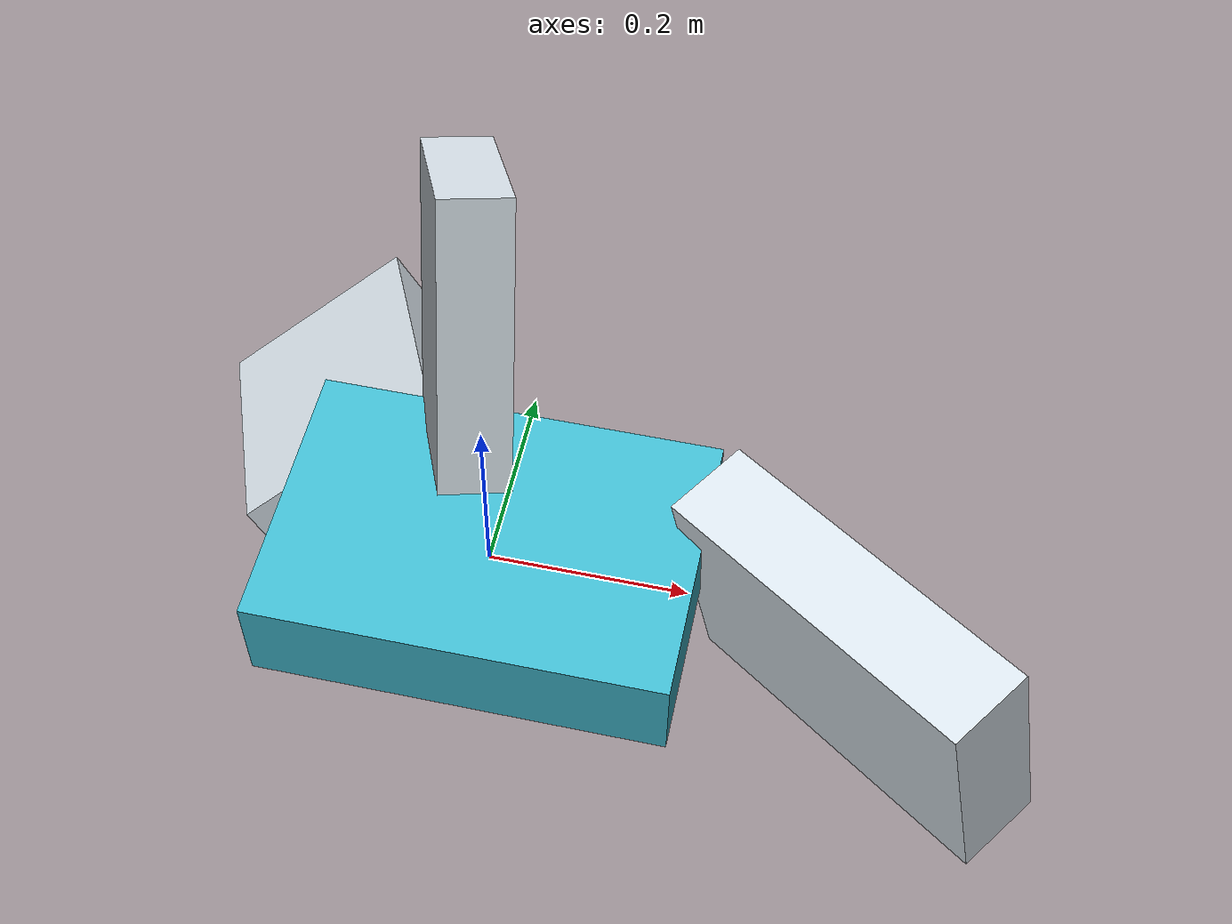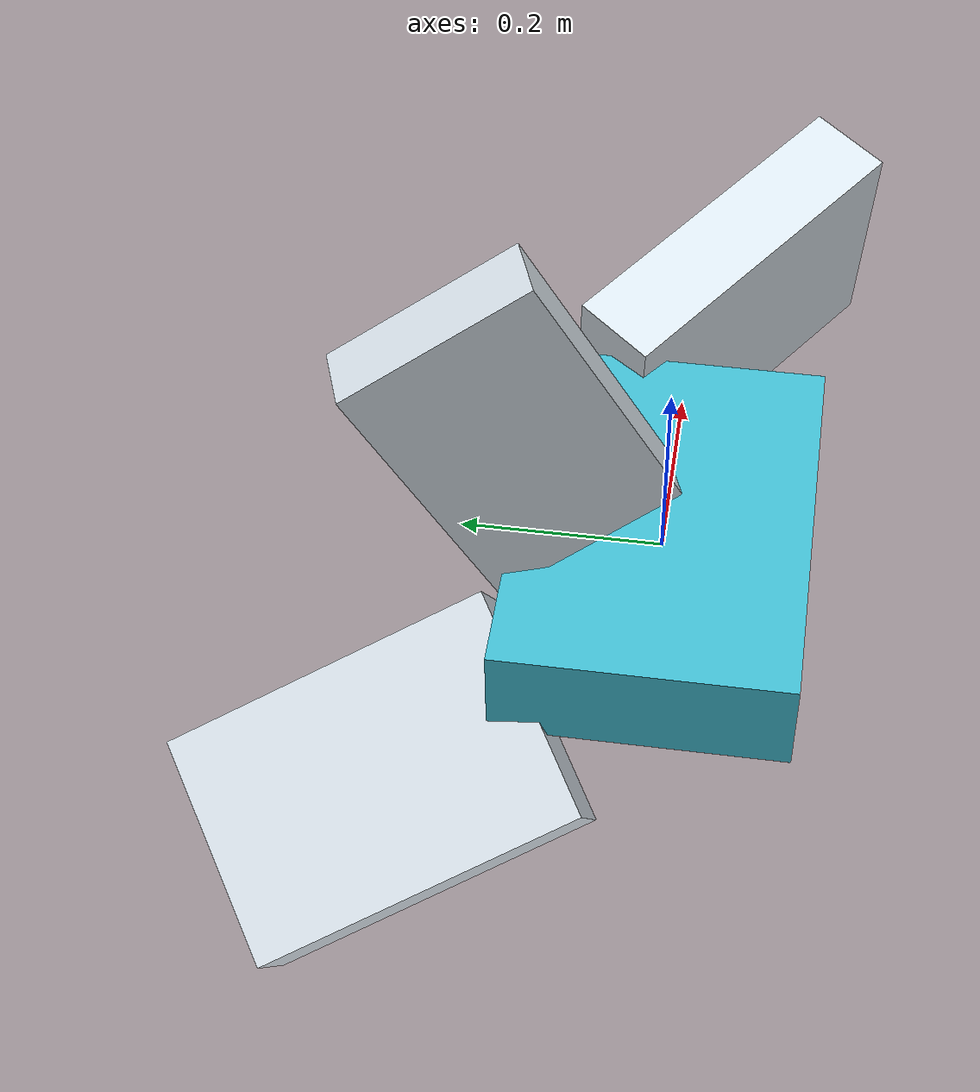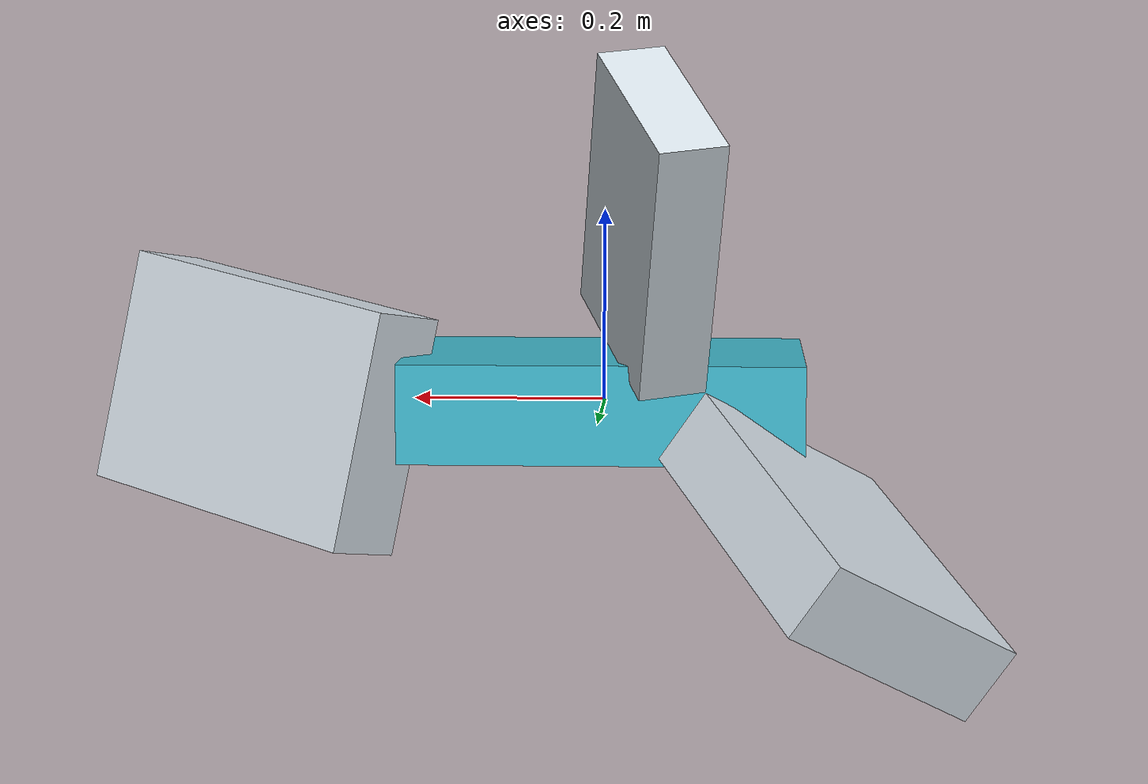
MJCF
<mujoco model="criatura">
  <compiler angle="degree" autolimits="true"/>
  <option timestep="0.002083" gravity="0 0 0" integrator="implicitfast"/>
  <default>
    <geom type="box" density="300.0" rgba="0.85 0.89 0.92 1"/>
    <joint type="hinge"/>
    <motor ctrlrange="-1 1"/>
  </default>
  <worldbody>
    <body name="p0_n0" pos="0.00000 0.00000 0.00000" quat="1.000000 0.000000 0.000000 0.000000">
      <freejoint name="raiz"/>
      <geom name="g_p0_n0" size="0.20754 0.14290 0.05106" rgba="0.25 0.72 0.8 1"/>
      <body name="p1_n0" pos="0.36667 -0.03080 -0.00653" quat="0.629894 0.704124 -0.284047 -0.163586">
        <joint name="p1_n0_j0" axis="1.0000 0.0000 0.0000" pos="-0.20269 0 0" range="-45.96 45.96" damping="1.1309"/>
        <joint name="p1_n0_j1" axis="0.0000 -1.0000 0.0000" pos="-0.20269 0 0" range="-45.96 45.96" damping="1.1309"/>
        <joint name="p1_n0_j2" axis="0.0000 0.0000 1.0000" pos="-0.20269 0 0" range="-45.96 45.96" damping="1.1309"/>
        <geom name="g_p1_n0" size="0.18269 0.12579 0.04495"/>
      </body>
      <body name="p2_n0" pos="-0.23189 0.24244 -0.12124" quat="0.484285 -0.284214 -0.099348 0.821474">
        <joint name="p2_n0_j0" axis="1.0000 0.0000 0.0000" pos="-0.18929 0 0" range="-45.96 45.96" damping="0.9710"/>
        <joint name="p2_n0_j1" axis="0.0000 -1.0000 0.0000" pos="-0.18929 0 0" range="-45.96 45.96" damping="0.9710"/>
        <joint name="p2_n0_j2" axis="0.0000 0.0000 1.0000" pos="-0.18929 0 0" range="-45.96 45.96" damping="0.9710"/>
        <geom name="g_p2_n0" size="0.16929 0.11656 0.04165"/>
      </body>
      <body name="p3_n0" pos="-0.05146 0.14298 0.19512" quat="0.677600 -0.053069 -0.671366 0.295481">
        <joint name="p3_n0_j0" axis="1.0000 0.0000 0.0000" pos="-0.16398 0 0" range="-45.96 45.96" damping="0.7024"/>
        <joint name="p3_n0_j1" axis="0.0000 -1.0000 0.0000" pos="-0.16398 0 0" range="-45.96 45.96" damping="0.7024"/>
        <joint name="p3_n0_j2" axis="0.0000 0.0000 1.0000" pos="-0.16398 0 0" range="-45.96 45.96" damping="0.7024"/>
        <geom name="g_p3_n0" size="0.14398 0.09914 0.03543"/>
      </body>
    </body>
  </worldbody>
  <actuator>
    <motor name="m_p1_n0_j0" joint="p1_n0_j0" gear="-22.6186"/>
    <motor name="m_p1_n0_j1" joint="p1_n0_j1" gear="-22.6186"/>
    <motor name="m_p1_n0_j2" joint="p1_n0_j2" gear="-22.6186"/>
    <motor name="m_p2_n0_j0" joint="p2_n0_j0" gear="-19.4202"/>
    <motor name="m_p2_n0_j1" joint="p2_n0_j1" gear="-19.4202"/>
    <motor name="m_p2_n0_j2" joint="p2_n0_j2" gear="-19.4202"/>
    <motor name="m_p3_n0_j0" joint="p3_n0_j0" gear="-14.0483"/>
    <motor name="m_p3_n0_j1" joint="p3_n0_j1" gear="-14.0483"/>
    <motor name="m_p3_n0_j2" joint="p3_n0_j2" gear="-14.0483"/>
  </actuator>
</mujoco>
